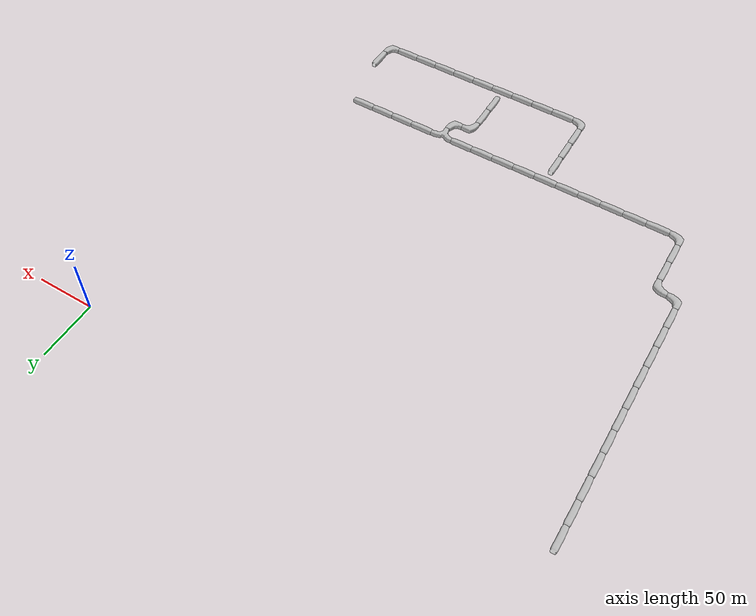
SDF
<sdf version="1.6">
 <world name="cave_8000_16">
  <include>
   <static>true</static>
   <name>cave_-2_-18</name>
   <pose>-40 -360 0 0 0 0.0</pose>
   <uri>model://cave_straight_20m</uri>
  </include>
  <include>
   <static>true</static>
   <name>cave_-2_-19</name>
   <pose>-40 -380 0 0 0 1.5707963267948966</pose>
   <uri>model://cave_L_20m</uri>
  </include>
  <include>
   <static>true</static>
   <name>cave_-3_-19</name>
   <pose>-60 -380 0 0 0 1.5707963267948966</pose>
   <uri>model://cave_straight_20m</uri>
  </include>
  <include>
   <static>true</static>
   <name>cave_-4_-19</name>
   <pose>-80 -380 0 0 0 1.5707963267948966</pose>
   <uri>model://cave_straight_20m</uri>
  </include>
  <include>
   <static>true</static>
   <name>cave_-5_-19</name>
   <pose>-100 -380 0 0 0 1.5707963267948966</pose>
   <uri>model://cave_straight_20m</uri>
  </include>
  <include>
   <static>true</static>
   <name>cave_-6_-19</name>
   <pose>-120 -380 0 0 0 1.5707963267948966</pose>
   <uri>model://cave_straight_20m</uri>
  </include>
  <include>
   <static>true</static>
   <name>cave_-7_-19</name>
   <pose>-140 -380 0 0 0 1.5707963267948966</pose>
   <uri>model://cave_straight_20m</uri>
  </include>
  <include>
   <static>true</static>
   <name>cave_-8_-19</name>
   <pose>-160 -380 0 0 0 1.5707963267948966</pose>
   <uri>model://cave_straight_20m</uri>
  </include>
  <include>
   <static>true</static>
   <name>cave_-9_-19</name>
   <pose>-180 -380 0 0 0 1.5707963267948966</pose>
   <uri>model://cave_straight_20m</uri>
  </include>
  <include>
   <static>true</static>
   <name>cave_-10_-19</name>
   <pose>-200 -380 0 0 0 1.5707963267948966</pose>
   <uri>model://cave_straight_20m</uri>
  </include>
  <include>
   <static>true</static>
   <name>cave_-11_-19</name>
   <pose>-220 -380 0 0 0 1.5707963267948966</pose>
   <uri>model://cave_straight_20m</uri>
  </include>
  <include>
   <static>true</static>
   <name>cave_-12_-19</name>
   <pose>-240 -380 0 0 0 0.0</pose>
   <uri>model://cave_L_20m</uri>
  </include>
  <include>
   <static>true</static>
   <name>cave_-12_-18</name>
   <pose>-240 -360 0 0 0 0.0</pose>
   <uri>model://cave_straight_20m</uri>
  </include>
  <include>
   <static>true</static>
   <name>cave_-12_-17</name>
   <pose>-240 -340 0 0 0 0.0</pose>
   <uri>model://cave_straight_20m</uri>
  </include>
  <include>
   <static>true</static>
   <name>cave_-12_-16</name>
   <pose>-240 -320 0 0 0 0.0</pose>
   <uri>model://cave_straight_20m</uri>
  </include>
  <include>
   <static>true</static>
   <name>cave_-3_-15</name>
   <pose>-60 -300 0 0 0 1.5707963267948966</pose>
   <uri>model://cave_straight_20m</uri>
  </include>
  <include>
   <static>true</static>
   <name>cave_-4_-15</name>
   <pose>-80 -300 0 0 0 1.5707963267948966</pose>
   <uri>model://cave_straight_20m</uri>
  </include>
  <include>
   <static>true</static>
   <name>cave_-5_-15</name>
   <pose>-100 -300 0 0 0 1.5707963267948966</pose>
   <uri>model://cave_straight_20m</uri>
  </include>
  <include>
   <static>true</static>
   <name>cave_-6_-15</name>
   <pose>-120 -300 0 0 0 1.5707963267948966</pose>
   <uri>model://cave_straight_20m</uri>
  </include>
  <include>
   <static>true</static>
   <name>cave_-7_-15</name>
   <pose>-140 -300 0 0 0 3.141592653589793</pose>
   <uri>model://cave_3way_20m</uri>
  </include>
  <include>
   <static>true</static>
   <name>cave_-7_-16</name>
   <pose>-140 -320 0 0 0 1.5707963267948966</pose>
   <uri>model://cave_L_20m</uri>
  </include>
  <include>
   <static>true</static>
   <name>cave_-8_-16</name>
   <pose>-160 -320 0 0 0 -1.5707963267948966</pose>
   <uri>model://cave_L_20m</uri>
  </include>
  <include>
   <static>true</static>
   <name>cave_-8_-17</name>
   <pose>-160 -340 0 0 0 0.0</pose>
   <uri>model://cave_straight_20m</uri>
  </include>
  <include>
   <static>true</static>
   <name>cave_-8_-18</name>
   <pose>-160 -360 0 0 0 0.0</pose>
   <uri>model://cave_straight_20m</uri>
  </include>
  <include>
   <static>true</static>
   <name>cave_-8_-15</name>
   <pose>-160 -300 0 0 0 1.5707963267948966</pose>
   <uri>model://cave_straight_20m</uri>
  </include>
  <include>
   <static>true</static>
   <name>cave_-9_-15</name>
   <pose>-180 -300 0 0 0 1.5707963267948966</pose>
   <uri>model://cave_straight_20m</uri>
  </include>
  <include>
   <static>true</static>
   <name>cave_-10_-15</name>
   <pose>-200 -300 0 0 0 1.5707963267948966</pose>
   <uri>model://cave_straight_20m</uri>
  </include>
  <include>
   <static>true</static>
   <name>cave_-11_-15</name>
   <pose>-220 -300 0 0 0 1.5707963267948966</pose>
   <uri>model://cave_straight_20m</uri>
  </include>
  <include>
   <static>true</static>
   <name>cave_-12_-15</name>
   <pose>-240 -300 0 0 0 1.5707963267948966</pose>
   <uri>model://cave_straight_20m</uri>
  </include>
  <include>
   <static>true</static>
   <name>cave_-13_-15</name>
   <pose>-260 -300 0 0 0 1.5707963267948966</pose>
   <uri>model://cave_straight_20m</uri>
  </include>
  <include>
   <static>true</static>
   <name>cave_-14_-15</name>
   <pose>-280 -300 0 0 0 1.5707963267948966</pose>
   <uri>model://cave_straight_20m</uri>
  </include>
  <include>
   <static>true</static>
   <name>cave_-15_-15</name>
   <pose>-300 -300 0 0 0 1.5707963267948966</pose>
   <uri>model://cave_straight_20m</uri>
  </include>
  <include>
   <static>true</static>
   <name>cave_-16_-15</name>
   <pose>-320 -300 0 0 0 1.5707963267948966</pose>
   <uri>model://cave_straight_20m</uri>
  </include>
  <include>
   <static>true</static>
   <name>cave_-17_-15</name>
   <pose>-340 -300 0 0 0 1.5707963267948966</pose>
   <uri>model://cave_straight_20m</uri>
  </include>
  <include>
   <static>true</static>
   <name>cave_-18_-15</name>
   <pose>-360 -300 0 0 0 0.0</pose>
   <uri>model://cave_L_20m</uri>
  </include>
  <include>
   <static>true</static>
   <name>cave_-18_-14</name>
   <pose>-360 -280 0 0 0 0.0</pose>
   <uri>model://cave_straight_20m</uri>
  </include>
  <include>
   <static>true</static>
   <name>cave_-18_-13</name>
   <pose>-360 -260 0 0 0 0.0</pose>
   <uri>model://cave_straight_20m</uri>
  </include>
  <include>
   <static>true</static>
   <name>cave_-18_-12</name>
   <pose>-360 -240 0 0 0 3.141592653589793</pose>
   <uri>model://cave_L_20m</uri>
  </include>
  <include>
   <static>true</static>
   <name>cave_-19_-12</name>
   <pose>-380 -240 0 0 0 0.0</pose>
   <uri>model://cave_L_20m</uri>
  </include>
  <include>
   <static>true</static>
   <name>cave_-19_-11</name>
   <pose>-380 -220 0 0 0 0.0</pose>
   <uri>model://cave_straight_20m</uri>
  </include>
  <include>
   <static>true</static>
   <name>cave_-19_-10</name>
   <pose>-380 -200 0 0 0 0.0</pose>
   <uri>model://cave_straight_20m</uri>
  </include>
  <include>
   <static>true</static>
   <name>cave_-19_-9</name>
   <pose>-380 -180 0 0 0 0.0</pose>
   <uri>model://cave_straight_20m</uri>
  </include>
  <include>
   <static>true</static>
   <name>cave_-19_-8</name>
   <pose>-380 -160 0 0 0 0.0</pose>
   <uri>model://cave_straight_20m</uri>
  </include>
  <include>
   <static>true</static>
   <name>cave_-19_-7</name>
   <pose>-380 -140 0 0 0 0.0</pose>
   <uri>model://cave_straight_20m</uri>
  </include>
  <include>
   <static>true</static>
   <name>cave_-19_-6</name>
   <pose>-380 -120 0 0 0 0.0</pose>
   <uri>model://cave_straight_20m</uri>
  </include>
  <include>
   <static>true</static>
   <name>cave_-19_-5</name>
   <pose>-380 -100 0 0 0 0.0</pose>
   <uri>model://cave_straight_20m</uri>
  </include>
  <include>
   <static>true</static>
   <name>cave_-19_-4</name>
   <pose>-380 -80 0 0 0 0.0</pose>
   <uri>model://cave_straight_20m</uri>
  </include>
  <include>
   <static>true</static>
   <name>cave_-19_-3</name>
   <pose>-380 -60 0 0 0 0.0</pose>
   <uri>model://cave_straight_20m</uri>
  </include>
  <include>
   <static>true</static>
   <name>cave_-19_-2</name>
   <pose>-380 -40 0 0 0 0.0</pose>
   <uri>model://cave_straight_20m</uri>
  </include>
  <include>
   <static>true</static>
   <name>cave_-19_-1</name>
   <pose>-380 -20 0 0 0 0.0</pose>
   <uri>model://cave_straight_20m</uri>
  </include>
 </world>
</sdf>
